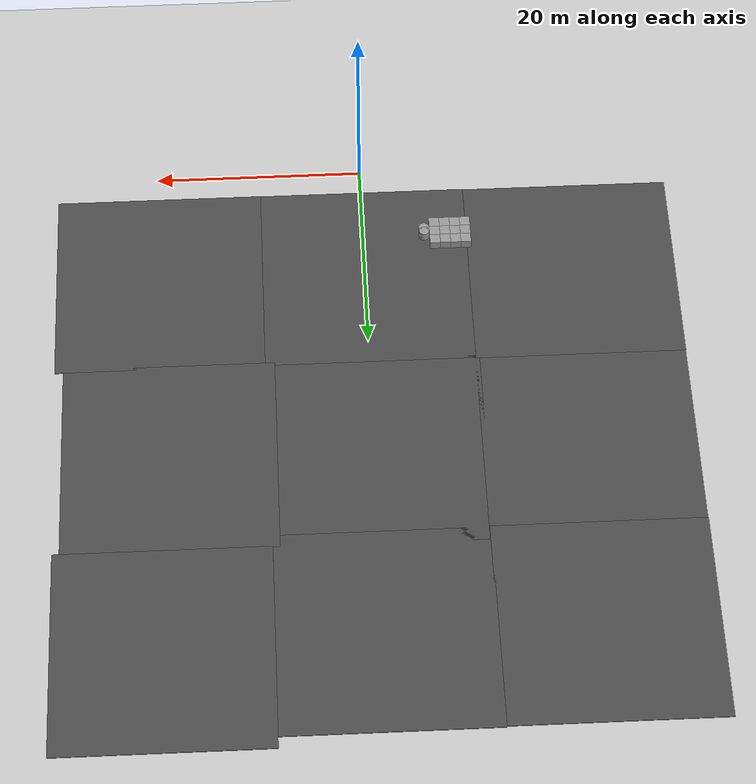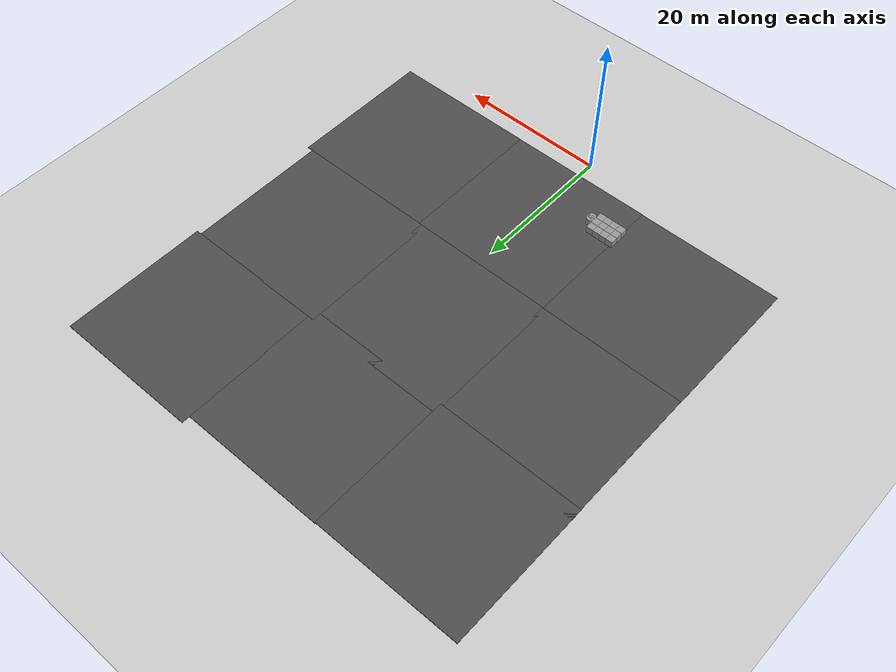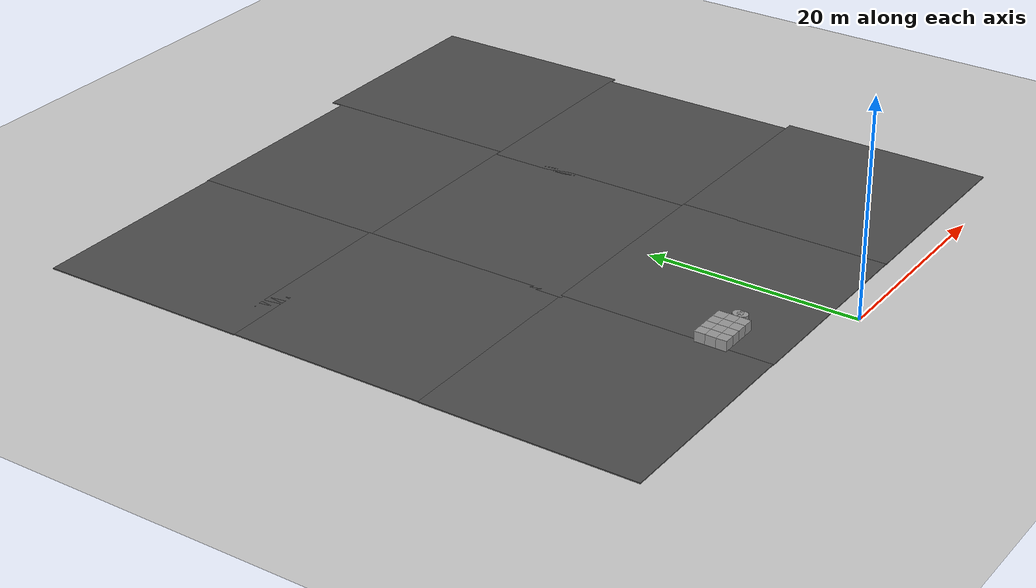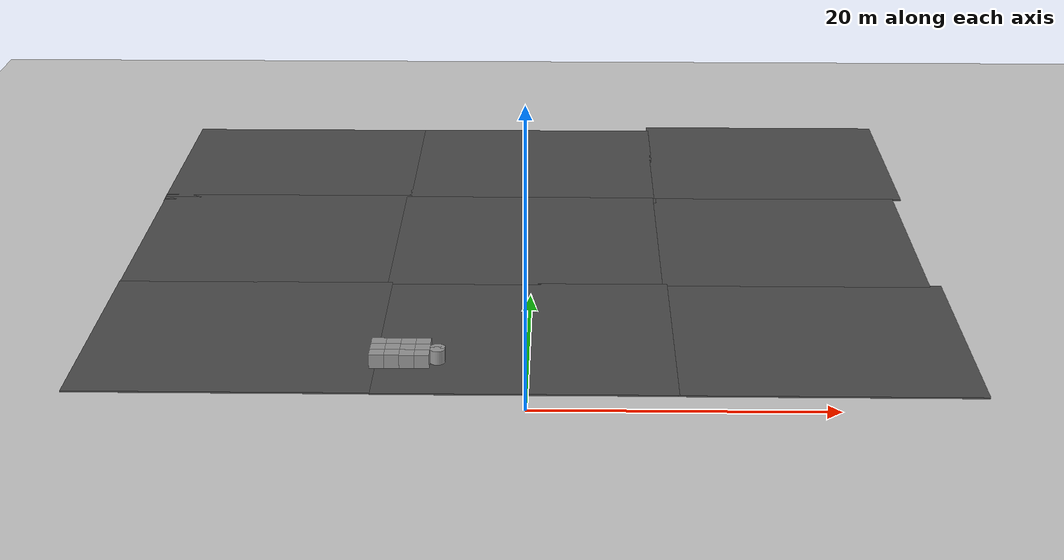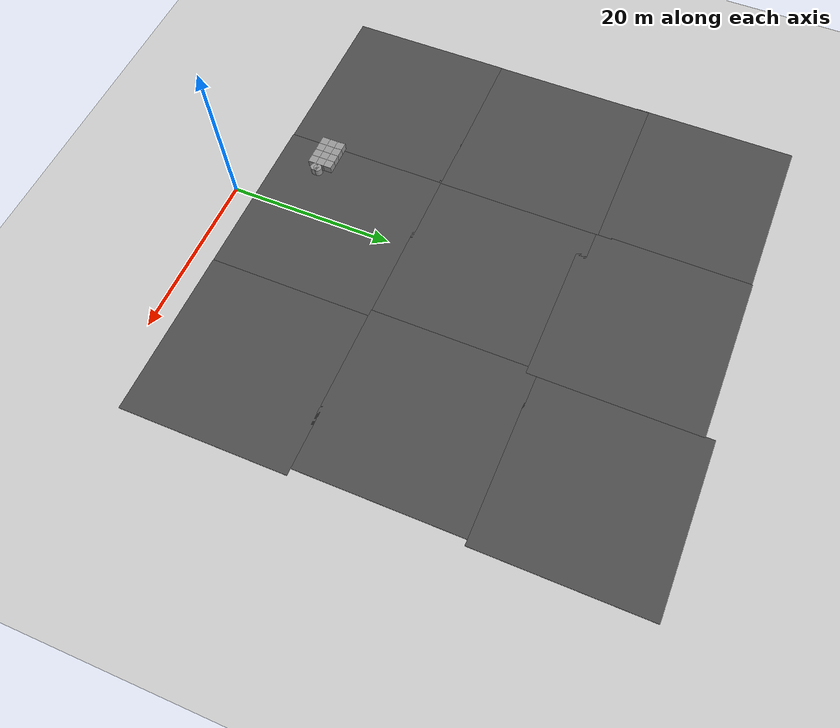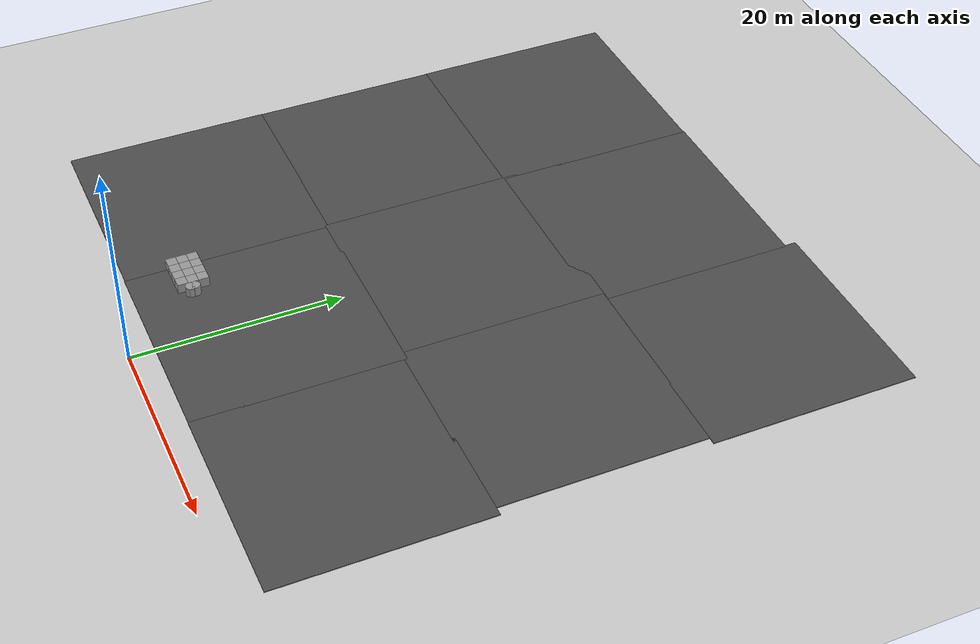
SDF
<sdf version="1.6">
 <world name="default">
  <light name="sun" type="directional">
   <pose>0 0 10 0 -0 0</pose>
   <diffuse>0.8 0.8 0.8 1</diffuse>
   <specular>0.1 0.1 0.1 1</specular>
   <attenuation>
    <range>1000</range>
    <constant>0.9</constant>
    <linear>0.01</linear>
    <quadratic>0.001</quadratic>
   </attenuation>
   <direction>-0.5 0.5 -1</direction>
  </light>
  <model name="ground_plane">
   <static>1</static>
   <link name="link">
    <collision name="collision">
     <geometry><plane><normal>0 0 1</normal><size>100 100</size></plane></geometry>
     <surface><friction><ode><mu>100</mu><mu2>50</mu2></ode></friction></surface>
    </collision>
    <visual name="visual">
     <cast_shadows>0</cast_shadows>
     <geometry><plane><normal>0 0 1</normal><size>100 100</size></plane></geometry>
     <material>
      <script><uri>file://media/materials/scripts/gazebo.material</uri><name>Gazebo/Grey</name></script>
     </material>
    </visual>
   </link>
  </model>
  <gravity>0 0 -9.8</gravity>
  <magnetic_field>6e-06 2.3e-05 -4.2e-05</magnetic_field>
  <atmosphere type="adiabatic"/>
  <physics name="default_physics" default="0" type="ode">
   <max_step_size>0.002</max_step_size>
   <real_time_factor>2</real_time_factor>
   <real_time_update_rate>1000</real_time_update_rate>
  </physics>
  <scene><ambient>0.4 0.4 0.4 1</ambient><background>0.7 0.7 0.7 1</background><shadows>1</shadows></scene>
  <spherical_coordinates>
   <surface_model>EARTH_WGS84</surface_model>
   <latitude_deg>0</latitude_deg>
   <longitude_deg>0</longitude_deg>
   <elevation>0</elevation>
   <heading_deg>0</heading_deg>
  </spherical_coordinates>
  <model name="asphalt_plane">
   <static>1</static>
   <link name="link">
    <collision name="collision"><geometry><box><size>20 20 0.1</size></box></geometry></collision>
    <visual name="visual">
     <cast_shadows>0</cast_shadows>
     <geometry><box><size>20 20 0.1</size></box></geometry>
     <material>
      <script>
       <uri>model://asphalt_plane/materials/scripts</uri>
       <uri>model://asphalt_plane/materials/textures</uri>
       <name>vrc/asphalt</name>
      </script>
     </material>
    </visual>
   </link>
   <pose>-0.132526 12.4193 0 0 -0 0</pose>
  </model>
  <model name="asphalt_plane_0">
   <static>1</static>
   <link name="link">
    <collision name="collision"><geometry><box><size>20 20 0.1</size></box></geometry></collision>
    <visual name="visual">
     <cast_shadows>0</cast_shadows>
     <geometry><box><size>20 20 0.1</size></box></geometry>
     <material>
      <script>
       <uri>model://asphalt_plane/materials/scripts</uri>
       <uri>model://asphalt_plane/materials/textures</uri>
       <name>vrc/asphalt</name>
      </script>
     </material>
    </visual>
   </link>
   <pose>-20.1156 12.4778 0 0 -0 0</pose>
  </model>
  <model name="asphalt_plane_1">
   <static>1</static>
   <link name="link">
    <collision name="collision"><geometry><box><size>20 20 0.1</size></box></geometry></collision>
    <visual name="visual">
     <cast_shadows>0</cast_shadows>
     <geometry><box><size>20 20 0.1</size></box></geometry>
     <material>
      <script>
       <uri>model://asphalt_plane/materials/scripts</uri>
       <uri>model://asphalt_plane/materials/textures</uri>
       <name>vrc/asphalt</name>
      </script>
     </material>
    </visual>
   </link>
   <pose>19.7678 12.3935 0 0 -0 0</pose>
  </model>
  <model name="asphalt_plane_2">
   <static>1</static>
   <link name="link">
    <collision name="collision"><geometry><box><size>20 20 0.1</size></box></geometry></collision>
    <visual name="visual">
     <cast_shadows>0</cast_shadows>
     <geometry><box><size>20 20 0.1</size></box></geometry>
     <material>
      <script>
       <uri>model://asphalt_plane/materials/scripts</uri>
       <uri>model://asphalt_plane/materials/textures</uri>
       <name>vrc/asphalt</name>
      </script>
     </material>
    </visual>
   </link>
   <pose>-20.0756 32.4215 0 0 -0 0</pose>
  </model>
  <model name="asphalt_plane_3">
   <static>1</static>
   <link name="link">
    <collision name="collision"><geometry><box><size>20 20 0.1</size></box></geometry></collision>
    <visual name="visual">
     <cast_shadows>0</cast_shadows>
     <geometry><box><size>20 20 0.1</size></box></geometry>
     <material>
      <script>
       <uri>model://asphalt_plane/materials/scripts</uri>
       <uri>model://asphalt_plane/materials/textures</uri>
       <name>vrc/asphalt</name>
      </script>
     </material>
    </visual>
   </link>
   <pose>-0.46371 32.1726 0 0 -0 0</pose>
  </model>
  <model name="asphalt_plane_4">
   <static>1</static>
   <link name="link">
    <collision name="collision"><geometry><box><size>20 20 0.1</size></box></geometry></collision>
    <visual name="visual">
     <cast_shadows>0</cast_shadows>
     <geometry><box><size>20 20 0.1</size></box></geometry>
     <material>
      <script>
       <uri>model://asphalt_plane/materials/scripts</uri>
       <uri>model://asphalt_plane/materials/textures</uri>
       <name>vrc/asphalt</name>
      </script>
     </material>
    </visual>
   </link>
   <pose>18.9559 32.1129 0 0 -0 0</pose>
  </model>
  <model name="asphalt_plane_5">
   <static>1</static>
   <link name="link">
    <collision name="collision"><geometry><box><size>20 20 0.1</size></box></geometry></collision>
    <visual name="visual">
     <cast_shadows>0</cast_shadows>
     <geometry><box><size>20 20 0.1</size></box></geometry>
     <material>
      <script>
       <uri>model://asphalt_plane/materials/scripts</uri>
       <uri>model://asphalt_plane/materials/textures</uri>
       <name>vrc/asphalt</name>
      </script>
     </material>
    </visual>
   </link>
   <pose>-20.1223 50.8095 0 0 -0 0</pose>
  </model>
  <model name="asphalt_plane_6">
   <static>1</static>
   <link name="link">
    <collision name="collision"><geometry><box><size>20 20 0.1</size></box></geometry></collision>
    <visual name="visual">
     <cast_shadows>0</cast_shadows>
     <geometry><box><size>20 20 0.1</size></box></geometry>
     <material>
      <script>
       <uri>model://asphalt_plane/materials/scripts</uri>
       <uri>model://asphalt_plane/materials/textures</uri>
       <name>vrc/asphalt</name>
      </script>
     </material>
    </visual>
   </link>
   <pose>-0.241035 50.8968 0 0 -0 0</pose>
  </model>
  <model name="asphalt_plane_7">
   <static>1</static>
   <link name="link">
    <collision name="collision"><geometry><box><size>20 20 0.1</size></box></geometry></collision>
    <visual name="visual">
     <cast_shadows>0</cast_shadows>
     <geometry><box><size>20 20 0.1</size></box></geometry>
     <material>
      <script>
       <uri>model://asphalt_plane/materials/scripts</uri>
       <uri>model://asphalt_plane/materials/textures</uri>
       <name>vrc/asphalt</name>
      </script>
     </material>
    </visual>
   </link>
   <pose>19.6222 51.9888 0 0 -0 0</pose>
  </model>
  <model name="car_0">
   <link name="link_0">
    <pose>-0.5 -0.883748 0 0 -0 0</pose>
    <inertial>
     <mass>1</mass>
     <inertia>
      <ixx>0.166667</ixx>
      <ixy>0</ixy>
      <ixz>0</ixz>
      <iyy>0.166667</iyy>
      <iyz>0</iyz>
      <izz>0.166667</izz>
     </inertia>
    </inertial>
    <visual name="visual">
     <geometry><box><size>1 1 1</size></box></geometry>
     <material>
      <lighting>1</lighting>
      <script><uri>file://media/materials/scripts/gazebo.material</uri><name>Gazebo/Grey</name></script>
      <ambient>0.3 0.3 0.3 1</ambient>
      <diffuse>0.7 0.7 0.7 1</diffuse>
      <specular>0.01 0.01 0.01 1</specular>
      <emissive>0 0 0 1</emissive>
     </material>
    </visual>
    <collision name="collision">
     <geometry><box><size>1 1 1</size></box></geometry>
     <surface>
      <friction>
       <ode><mu>1</mu><mu2>1</mu2><fdir1>0 0 0</fdir1><slip1>0</slip1><slip2>0</slip2></ode>
       <torsional>
        <coefficient>1</coefficient>
        <patch_radius>0</patch_radius>
        <surface_radius>0</surface_radius>
        <use_patch_radius>1</use_patch_radius>
        <ode><slip>0</slip></ode>
       </torsional>
      </friction>
      <bounce><restitution_coefficient>0</restitution_coefficient><threshold>1e+06</threshold></bounce>
      <contact>
       <collide_without_contact>0</collide_without_contact>
       <collide_without_contact_bitmask>1</collide_without_contact_bitmask>
       <collide_bitmask>1</collide_bitmask>
       <ode>
        <soft_cfm>0</soft_cfm>
        <soft_erp>0.2</soft_erp>
        <kp>1e+13</kp>
        <kd>1</kd>
        <max_vel>0.01</max_vel>
        <min_depth>0</min_depth>
       </ode>
       <bullet>
        <split_impulse>1</split_impulse>
        <split_impulse_penetration_threshold>-0.01</split_impulse_penetration_threshold>
        <soft_cfm>0</soft_cfm>
        <soft_erp>0.2</soft_erp>
        <kp>1e+13</kp>
        <kd>1</kd>
       </bullet>
      </contact>
     </surface>
    </collision>
   </link>
   <link name="link_1">
    <pose>0.5 -0.883748 0 0 -0 0</pose>
    <inertial>
     <mass>1</mass>
     <inertia>
      <ixx>0.166667</ixx>
      <ixy>0</ixy>
      <ixz>0</ixz>
      <iyy>0.166667</iyy>
      <iyz>0</iyz>
      <izz>0.166667</izz>
     </inertia>
    </inertial>
    <visual name="visual">
     <geometry><box><size>1 1 1</size></box></geometry>
     <material>
      <lighting>1</lighting>
      <script><uri>file://media/materials/scripts/gazebo.material</uri><name>Gazebo/Grey</name></script>
      <ambient>0.3 0.3 0.3 1</ambient>
      <diffuse>0.7 0.7 0.7 1</diffuse>
      <specular>0.01 0.01 0.01 1</specular>
      <emissive>0 0 0 1</emissive>
     </material>
    </visual>
    <collision name="collision">
     <geometry><box><size>1 1 1</size></box></geometry>
     <surface>
      <friction>
       <ode><mu>1</mu><mu2>1</mu2><fdir1>0 0 0</fdir1><slip1>0</slip1><slip2>0</slip2></ode>
       <torsional>
        <coefficient>1</coefficient>
        <patch_radius>0</patch_radius>
        <surface_radius>0</surface_radius>
        <use_patch_radius>1</use_patch_radius>
        <ode><slip>0</slip></ode>
       </torsional>
      </friction>
      <bounce><restitution_coefficient>0</restitution_coefficient><threshold>1e+06</threshold></bounce>
      <contact>
       <collide_without_contact>0</collide_without_contact>
       <collide_without_contact_bitmask>1</collide_without_contact_bitmask>
       <collide_bitmask>1</collide_bitmask>
       <ode>
        <soft_cfm>0</soft_cfm>
        <soft_erp>0.2</soft_erp>
        <kp>1e+13</kp>
        <kd>1</kd>
        <max_vel>0.01</max_vel>
        <min_depth>0</min_depth>
       </ode>
       <bullet>
        <split_impulse>1</split_impulse>
        <split_impulse_penetration_threshold>-0.01</split_impulse_penetration_threshold>
        <soft_cfm>0</soft_cfm>
        <soft_erp>0.2</soft_erp>
        <kp>1e+13</kp>
        <kd>1</kd>
       </bullet>
      </contact>
     </surface>
    </collision>
   </link>
   <link name="link_12">
    <pose>-1.5 0.11625 0 0 -0 0</pose>
    <inertial>
     <mass>1</mass>
     <inertia>
      <ixx>0.166667</ixx>
      <ixy>0</ixy>
      <ixz>0</ixz>
      <iyy>0.166667</iyy>
      <iyz>0</iyz>
      <izz>0.166667</izz>
     </inertia>
    </inertial>
    <visual name="visual">
     <geometry><box><size>1 1 1</size></box></geometry>
     <material>
      <lighting>1</lighting>
      <script><uri>file://media/materials/scripts/gazebo.material</uri><name>Gazebo/Grey</name></script>
      <ambient>0.3 0.3 0.3 1</ambient>
      <diffuse>0.7 0.7 0.7 1</diffuse>
      <specular>0.01 0.01 0.01 1</specular>
      <emissive>0 0 0 1</emissive>
     </material>
    </visual>
    <collision name="collision">
     <geometry><box><size>1 1 1</size></box></geometry>
     <surface>
      <friction>
       <ode><mu>1</mu><mu2>1</mu2><fdir1>0 0 0</fdir1><slip1>0</slip1><slip2>0</slip2></ode>
       <torsional>
        <coefficient>1</coefficient>
        <patch_radius>0</patch_radius>
        <surface_radius>0</surface_radius>
        <use_patch_radius>1</use_patch_radius>
        <ode><slip>0</slip></ode>
       </torsional>
      </friction>
      <bounce><restitution_coefficient>0</restitution_coefficient><threshold>1e+06</threshold></bounce>
      <contact>
       <collide_without_contact>0</collide_without_contact>
       <collide_without_contact_bitmask>1</collide_without_contact_bitmask>
       <collide_bitmask>1</collide_bitmask>
       <ode>
        <soft_cfm>0</soft_cfm>
        <soft_erp>0.2</soft_erp>
        <kp>1e+13</kp>
        <kd>1</kd>
        <max_vel>0.01</max_vel>
        <min_depth>0</min_depth>
       </ode>
       <bullet>
        <split_impulse>1</split_impulse>
        <split_impulse_penetration_threshold>-0.01</split_impulse_penetration_threshold>
        <soft_cfm>0</soft_cfm>
        <soft_erp>0.2</soft_erp>
        <kp>1e+13</kp>
        <kd>1</kd>
       </bullet>
      </contact>
     </surface>
    </collision>
   </link>
   <link name="link_13">
    <pose>1.5 1.11625 0 0 -0 0</pose>
    <inertial>
     <mass>1</mass>
     <inertia>
      <ixx>0.166667</ixx>
      <ixy>0</ixy>
      <ixz>0</ixz>
      <iyy>0.166667</iyy>
      <iyz>0</iyz>
      <izz>0.166667</izz>
     </inertia>
    </inertial>
    <visual name="visual">
     <geometry><box><size>1 1 1</size></box></geometry>
     <material>
      <lighting>1</lighting>
      <script><uri>file://media/materials/scripts/gazebo.material</uri><name>Gazebo/Grey</name></script>
      <ambient>0.3 0.3 0.3 1</ambient>
      <diffuse>0.7 0.7 0.7 1</diffuse>
      <specular>0.01 0.01 0.01 1</specular>
      <emissive>0 0 0 1</emissive>
     </material>
    </visual>
    <collision name="collision">
     <geometry><box><size>1 1 1</size></box></geometry>
     <surface>
      <friction>
       <ode><mu>1</mu><mu2>1</mu2><fdir1>0 0 0</fdir1><slip1>0</slip1><slip2>0</slip2></ode>
       <torsional>
        <coefficient>1</coefficient>
        <patch_radius>0</patch_radius>
        <surface_radius>0</surface_radius>
        <use_patch_radius>1</use_patch_radius>
        <ode><slip>0</slip></ode>
       </torsional>
      </friction>
      <bounce><restitution_coefficient>0</restitution_coefficient><threshold>1e+06</threshold></bounce>
      <contact>
       <collide_without_contact>0</collide_without_contact>
       <collide_without_contact_bitmask>1</collide_without_contact_bitmask>
       <collide_bitmask>1</collide_bitmask>
       <ode>
        <soft_cfm>0</soft_cfm>
        <soft_erp>0.2</soft_erp>
        <kp>1e+13</kp>
        <kd>1</kd>
        <max_vel>0.01</max_vel>
        <min_depth>0</min_depth>
       </ode>
       <bullet>
        <split_impulse>1</split_impulse>
        <split_impulse_penetration_threshold>-0.01</split_impulse_penetration_threshold>
        <soft_cfm>0</soft_cfm>
        <soft_erp>0.2</soft_erp>
        <kp>1e+13</kp>
        <kd>1</kd>
       </bullet>
      </contact>
     </surface>
    </collision>
   </link>
   <link name="link_14">
    <pose>0.5 1.11625 0 0 -0 0</pose>
    <inertial>
     <mass>1</mass>
     <inertia>
      <ixx>0.166667</ixx>
      <ixy>0</ixy>
      <ixz>0</ixz>
      <iyy>0.166667</iyy>
      <iyz>0</iyz>
      <izz>0.166667</izz>
     </inertia>
    </inertial>
    <visual name="visual">
     <geometry><box><size>1 1 1</size></box></geometry>
     <material>
      <lighting>1</lighting>
      <script><uri>file://media/materials/scripts/gazebo.material</uri><name>Gazebo/Grey</name></script>
      <ambient>0.3 0.3 0.3 1</ambient>
      <diffuse>0.7 0.7 0.7 1</diffuse>
      <specular>0.01 0.01 0.01 1</specular>
      <emissive>0 0 0 1</emissive>
     </material>
    </visual>
    <collision name="collision">
     <geometry><box><size>1 1 1</size></box></geometry>
     <surface>
      <friction>
       <ode><mu>1</mu><mu2>1</mu2><fdir1>0 0 0</fdir1><slip1>0</slip1><slip2>0</slip2></ode>
       <torsional>
        <coefficient>1</coefficient>
        <patch_radius>0</patch_radius>
        <surface_radius>0</surface_radius>
        <use_patch_radius>1</use_patch_radius>
        <ode><slip>0</slip></ode>
       </torsional>
      </friction>
      <bounce><restitution_coefficient>0</restitution_coefficient><threshold>1e+06</threshold></bounce>
      <contact>
       <collide_without_contact>0</collide_without_contact>
       <collide_without_contact_bitmask>1</collide_without_contact_bitmask>
       <collide_bitmask>1</collide_bitmask>
       <ode>
        <soft_cfm>0</soft_cfm>
        <soft_erp>0.2</soft_erp>
        <kp>1e+13</kp>
        <kd>1</kd>
        <max_vel>0.01</max_vel>
        <min_depth>0</min_depth>
       </ode>
       <bullet>
        <split_impulse>1</split_impulse>
        <split_impulse_penetration_threshold>-0.01</split_impulse_penetration_threshold>
        <soft_cfm>0</soft_cfm>
        <soft_erp>0.2</soft_erp>
        <kp>1e+13</kp>
        <kd>1</kd>
       </bullet>
      </contact>
     </surface>
    </collision>
   </link>
   <link name="link_15">
    <pose>-0.5 1.11625 0 0 -0 0</pose>
    <inertial>
     <mass>1</mass>
     <inertia>
      <ixx>0.166667</ixx>
      <ixy>0</ixy>
      <ixz>0</ixz>
      <iyy>0.166667</iyy>
      <iyz>0</iyz>
      <izz>0.166667</izz>
     </inertia>
    </inertial>
    <visual name="visual">
     <geometry><box><size>1 1 1</size></box></geometry>
     <material>
      <lighting>1</lighting>
      <script><uri>file://media/materials/scripts/gazebo.material</uri><name>Gazebo/Grey</name></script>
      <ambient>0.3 0.3 0.3 1</ambient>
      <diffuse>0.7 0.7 0.7 1</diffuse>
      <specular>0.01 0.01 0.01 1</specular>
      <emissive>0 0 0 1</emissive>
     </material>
    </visual>
    <collision name="collision">
     <geometry><box><size>1 1 1</size></box></geometry>
     <surface>
      <friction>
       <ode><mu>1</mu><mu2>1</mu2><fdir1>0 0 0</fdir1><slip1>0</slip1><slip2>0</slip2></ode>
       <torsional>
        <coefficient>1</coefficient>
        <patch_radius>0</patch_radius>
        <surface_radius>0</surface_radius>
        <use_patch_radius>1</use_patch_radius>
        <ode><slip>0</slip></ode>
       </torsional>
      </friction>
      <bounce><restitution_coefficient>0</restitution_coefficient><threshold>1e+06</threshold></bounce>
      <contact>
       <collide_without_contact>0</collide_without_contact>
       <collide_without_contact_bitmask>1</collide_without_contact_bitmask>
       <collide_bitmask>1</collide_bitmask>
       <ode>
        <soft_cfm>0</soft_cfm>
        <soft_erp>0.2</soft_erp>
        <kp>1e+13</kp>
        <kd>1</kd>
        <max_vel>0.01</max_vel>
        <min_depth>0</min_depth>
       </ode>
       <bullet>
        <split_impulse>1</split_impulse>
        <split_impulse_penetration_threshold>-0.01</split_impulse_penetration_threshold>
        <soft_cfm>0</soft_cfm>
        <soft_erp>0.2</soft_erp>
        <kp>1e+13</kp>
        <kd>1</kd>
       </bullet>
      </contact>
     </surface>
    </collision>
   </link>
   <link name="link_16">
    <pose>-1.5 1.11625 0 0 -0 0</pose>
    <inertial>
     <mass>1</mass>
     <inertia>
      <ixx>0.166667</ixx>
      <ixy>0</ixy>
      <ixz>0</ixz>
      <iyy>0.166667</iyy>
      <iyz>0</iyz>
      <izz>0.166667</izz>
     </inertia>
    </inertial>
    <visual name="visual">
     <geometry><box><size>1 1 1</size></box></geometry>
     <material>
      <lighting>1</lighting>
      <script><uri>file://media/materials/scripts/gazebo.material</uri><name>Gazebo/Grey</name></script>
      <ambient>0.3 0.3 0.3 1</ambient>
      <diffuse>0.7 0.7 0.7 1</diffuse>
      <specular>0.01 0.01 0.01 1</specular>
      <emissive>0 0 0 1</emissive>
     </material>
    </visual>
    <collision name="collision">
     <geometry><box><size>1 1 1</size></box></geometry>
     <surface>
      <friction>
       <ode><mu>1</mu><mu2>1</mu2><fdir1>0 0 0</fdir1><slip1>0</slip1><slip2>0</slip2></ode>
       <torsional>
        <coefficient>1</coefficient>
        <patch_radius>0</patch_radius>
        <surface_radius>0</surface_radius>
        <use_patch_radius>1</use_patch_radius>
        <ode><slip>0</slip></ode>
       </torsional>
      </friction>
      <bounce><restitution_coefficient>0</restitution_coefficient><threshold>1e+06</threshold></bounce>
      <contact>
       <collide_without_contact>0</collide_without_contact>
       <collide_without_contact_bitmask>1</collide_without_contact_bitmask>
       <collide_bitmask>1</collide_bitmask>
       <ode>
        <soft_cfm>0</soft_cfm>
        <soft_erp>0.2</soft_erp>
        <kp>1e+13</kp>
        <kd>1</kd>
        <max_vel>0.01</max_vel>
        <min_depth>0</min_depth>
       </ode>
       <bullet>
        <split_impulse>1</split_impulse>
        <split_impulse_penetration_threshold>-0.01</split_impulse_penetration_threshold>
        <soft_cfm>0</soft_cfm>
        <soft_erp>0.2</soft_erp>
        <kp>1e+13</kp>
        <kd>1</kd>
       </bullet>
      </contact>
     </surface>
    </collision>
   </link>
   <link name="link_19">
    <pose>2.5 -0.287812 0 0 -0 0</pose>
    <inertial>
     <mass>1</mass>
     <inertia><ixx>0.145833</ixx><ixy>0</ixy><ixz>0</ixz><iyy>0.145833</iyy><iyz>0</iyz><izz>0.125</izz></inertia>
    </inertial>
    <visual name="visual">
     <geometry><cylinder><radius>0.5</radius><length>1</length></cylinder></geometry>
     <material>
      <lighting>1</lighting>
      <script><uri>file://media/materials/scripts/gazebo.material</uri><name>Gazebo/Grey</name></script>
      <ambient>0.3 0.3 0.3 1</ambient>
      <diffuse>0.7 0.7 0.7 1</diffuse>
      <specular>0.01 0.01 0.01 1</specular>
      <emissive>0 0 0 1</emissive>
     </material>
    </visual>
    <collision name="collision">
     <geometry><cylinder><radius>0.5</radius><length>1</length></cylinder></geometry>
     <surface>
      <friction>
       <ode><mu>1</mu><mu2>1</mu2><fdir1>0 0 0</fdir1><slip1>0</slip1><slip2>0</slip2></ode>
       <torsional>
        <coefficient>1</coefficient>
        <patch_radius>0</patch_radius>
        <surface_radius>0</surface_radius>
        <use_patch_radius>1</use_patch_radius>
        <ode><slip>0</slip></ode>
       </torsional>
      </friction>
      <bounce><restitution_coefficient>0</restitution_coefficient><threshold>1e+06</threshold></bounce>
      <contact>
       <collide_without_contact>0</collide_without_contact>
       <collide_without_contact_bitmask>1</collide_without_contact_bitmask>
       <collide_bitmask>1</collide_bitmask>
       <ode>
        <soft_cfm>0</soft_cfm>
        <soft_erp>0.2</soft_erp>
        <kp>1e+13</kp>
        <kd>1</kd>
        <max_vel>0.01</max_vel>
        <min_depth>0</min_depth>
       </ode>
       <bullet>
        <split_impulse>1</split_impulse>
        <split_impulse_penetration_threshold>-0.01</split_impulse_penetration_threshold>
        <soft_cfm>0</soft_cfm>
        <soft_erp>0.2</soft_erp>
        <kp>1e+13</kp>
        <kd>1</kd>
       </bullet>
      </contact>
     </surface>
    </collision>
   </link>
   <link name="link_2">
    <pose>1.5 -0.883748 0 0 -0 0</pose>
    <inertial>
     <mass>1</mass>
     <inertia>
      <ixx>0.166667</ixx>
      <ixy>0</ixy>
      <ixz>0</ixz>
      <iyy>0.166667</iyy>
      <iyz>0</iyz>
      <izz>0.166667</izz>
     </inertia>
    </inertial>
    <visual name="visual">
     <geometry><box><size>1 1 1</size></box></geometry>
     <material>
      <lighting>1</lighting>
      <script><uri>file://media/materials/scripts/gazebo.material</uri><name>Gazebo/Grey</name></script>
      <ambient>0.3 0.3 0.3 1</ambient>
      <diffuse>0.7 0.7 0.7 1</diffuse>
      <specular>0.01 0.01 0.01 1</specular>
      <emissive>0 0 0 1</emissive>
     </material>
    </visual>
    <collision name="collision">
     <geometry><box><size>1 1 1</size></box></geometry>
     <surface>
      <friction>
       <ode><mu>1</mu><mu2>1</mu2><fdir1>0 0 0</fdir1><slip1>0</slip1><slip2>0</slip2></ode>
       <torsional>
        <coefficient>1</coefficient>
        <patch_radius>0</patch_radius>
        <surface_radius>0</surface_radius>
        <use_patch_radius>1</use_patch_radius>
        <ode><slip>0</slip></ode>
       </torsional>
      </friction>
      <bounce><restitution_coefficient>0</restitution_coefficient><threshold>1e+06</threshold></bounce>
      <contact>
       <collide_without_contact>0</collide_without_contact>
       <collide_without_contact_bitmask>1</collide_without_contact_bitmask>
       <collide_bitmask>1</collide_bitmask>
       <ode>
        <soft_cfm>0</soft_cfm>
        <soft_erp>0.2</soft_erp>
        <kp>1e+13</kp>
        <kd>1</kd>
        <max_vel>0.01</max_vel>
        <min_depth>0</min_depth>
       </ode>
       <bullet>
        <split_impulse>1</split_impulse>
        <split_impulse_penetration_threshold>-0.01</split_impulse_penetration_threshold>
        <soft_cfm>0</soft_cfm>
        <soft_erp>0.2</soft_erp>
        <kp>1e+13</kp>
        <kd>1</kd>
       </bullet>
      </contact>
     </surface>
    </collision>
   </link>
   <link name="link_20">
    <pose>2.5 0.11625 0 0 -0 0</pose>
    <inertial>
     <mass>1</mass>
     <inertia><ixx>0.145833</ixx><ixy>0</ixy><ixz>0</ixz><iyy>0.145833</iyy><iyz>0</iyz><izz>0.125</izz></inertia>
    </inertial>
    <visual name="visual">
     <geometry><cylinder><radius>0.5</radius><length>1</length></cylinder></geometry>
     <material>
      <lighting>1</lighting>
      <script><uri>file://media/materials/scripts/gazebo.material</uri><name>Gazebo/Grey</name></script>
      <ambient>0.3 0.3 0.3 1</ambient>
      <diffuse>0.7 0.7 0.7 1</diffuse>
      <specular>0.01 0.01 0.01 1</specular>
      <emissive>0 0 0 1</emissive>
     </material>
    </visual>
    <collision name="collision">
     <geometry><cylinder><radius>0.5</radius><length>1</length></cylinder></geometry>
     <surface>
      <friction>
       <ode><mu>1</mu><mu2>1</mu2><fdir1>0 0 0</fdir1><slip1>0</slip1><slip2>0</slip2></ode>
       <torsional>
        <coefficient>1</coefficient>
        <patch_radius>0</patch_radius>
        <surface_radius>0</surface_radius>
        <use_patch_radius>1</use_patch_radius>
        <ode><slip>0</slip></ode>
       </torsional>
      </friction>
      <bounce><restitution_coefficient>0</restitution_coefficient><threshold>1e+06</threshold></bounce>
      <contact>
       <collide_without_contact>0</collide_without_contact>
       <collide_without_contact_bitmask>1</collide_without_contact_bitmask>
       <collide_bitmask>1</collide_bitmask>
       <ode>
        <soft_cfm>0</soft_cfm>
        <soft_erp>0.2</soft_erp>
        <kp>1e+13</kp>
        <kd>1</kd>
        <max_vel>0.01</max_vel>
        <min_depth>0</min_depth>
       </ode>
       <bullet>
        <split_impulse>1</split_impulse>
        <split_impulse_penetration_threshold>-0.01</split_impulse_penetration_threshold>
        <soft_cfm>0</soft_cfm>
        <soft_erp>0.2</soft_erp>
        <kp>1e+13</kp>
        <kd>1</kd>
       </bullet>
      </contact>
     </surface>
    </collision>
   </link>
   <link name="link_3">
    <pose>1.5 0.116252 0 0 -0 0</pose>
    <inertial>
     <mass>1</mass>
     <inertia>
      <ixx>0.166667</ixx>
      <ixy>0</ixy>
      <ixz>0</ixz>
      <iyy>0.166667</iyy>
      <iyz>0</iyz>
      <izz>0.166667</izz>
     </inertia>
    </inertial>
    <visual name="visual">
     <geometry><box><size>1 1 1</size></box></geometry>
     <material>
      <lighting>1</lighting>
      <script><uri>file://media/materials/scripts/gazebo.material</uri><name>Gazebo/Grey</name></script>
      <ambient>0.3 0.3 0.3 1</ambient>
      <diffuse>0.7 0.7 0.7 1</diffuse>
      <specular>0.01 0.01 0.01 1</specular>
      <emissive>0 0 0 1</emissive>
     </material>
    </visual>
    <collision name="collision">
     <geometry><box><size>1 1 1</size></box></geometry>
     <surface>
      <friction>
       <ode><mu>1</mu><mu2>1</mu2><fdir1>0 0 0</fdir1><slip1>0</slip1><slip2>0</slip2></ode>
       <torsional>
        <coefficient>1</coefficient>
        <patch_radius>0</patch_radius>
        <surface_radius>0</surface_radius>
        <use_patch_radius>1</use_patch_radius>
        <ode><slip>0</slip></ode>
       </torsional>
      </friction>
      <bounce><restitution_coefficient>0</restitution_coefficient><threshold>1e+06</threshold></bounce>
      <contact>
       <collide_without_contact>0</collide_without_contact>
       <collide_without_contact_bitmask>1</collide_without_contact_bitmask>
       <collide_bitmask>1</collide_bitmask>
       <ode>
        <soft_cfm>0</soft_cfm>
        <soft_erp>0.2</soft_erp>
        <kp>1e+13</kp>
        <kd>1</kd>
        <max_vel>0.01</max_vel>
        <min_depth>0</min_depth>
       </ode>
       <bullet>
        <split_impulse>1</split_impulse>
        <split_impulse_penetration_threshold>-0.01</split_impulse_penetration_threshold>
        <soft_cfm>0</soft_cfm>
        <soft_erp>0.2</soft_erp>
        <kp>1e+13</kp>
        <kd>1</kd>
       </bullet>
      </contact>
     </surface>
    </collision>
   </link>
   <link name="link_4">
    <pose>0.5 0.116252 0 0 -0 0</pose>
    <inertial>
     <mass>1</mass>
     <inertia>
      <ixx>0.166667</ixx>
      <ixy>0</ixy>
      <ixz>0</ixz>
      <iyy>0.166667</iyy>
      <iyz>0</iyz>
      <izz>0.166667</izz>
     </inertia>
    </inertial>
    <visual name="visual">
     <geometry><box><size>1 1 1</size></box></geometry>
     <material>
      <lighting>1</lighting>
      <script><uri>file://media/materials/scripts/gazebo.material</uri><name>Gazebo/Grey</name></script>
      <ambient>0.3 0.3 0.3 1</ambient>
      <diffuse>0.7 0.7 0.7 1</diffuse>
      <specular>0.01 0.01 0.01 1</specular>
      <emissive>0 0 0 1</emissive>
     </material>
    </visual>
    <collision name="collision">
     <geometry><box><size>1 1 1</size></box></geometry>
     <surface>
      <friction>
       <ode><mu>1</mu><mu2>1</mu2><fdir1>0 0 0</fdir1><slip1>0</slip1><slip2>0</slip2></ode>
       <torsional>
        <coefficient>1</coefficient>
        <patch_radius>0</patch_radius>
        <surface_radius>0</surface_radius>
        <use_patch_radius>1</use_patch_radius>
        <ode><slip>0</slip></ode>
       </torsional>
      </friction>
      <bounce><restitution_coefficient>0</restitution_coefficient><threshold>1e+06</threshold></bounce>
      <contact>
       <collide_without_contact>0</collide_without_contact>
       <collide_without_contact_bitmask>1</collide_without_contact_bitmask>
       <collide_bitmask>1</collide_bitmask>
       <ode>
        <soft_cfm>0</soft_cfm>
        <soft_erp>0.2</soft_erp>
        <kp>1e+13</kp>
        <kd>1</kd>
        <max_vel>0.01</max_vel>
        <min_depth>0</min_depth>
       </ode>
       <bullet>
        <split_impulse>1</split_impulse>
        <split_impulse_penetration_threshold>-0.01</split_impulse_penetration_threshold>
        <soft_cfm>0</soft_cfm>
        <soft_erp>0.2</soft_erp>
        <kp>1e+13</kp>
        <kd>1</kd>
       </bullet>
      </contact>
     </surface>
    </collision>
   </link>
   <link name="link_5">
    <pose>-0.5 0.116252 0 0 -0 0</pose>
    <inertial>
     <mass>1</mass>
     <inertia>
      <ixx>0.166667</ixx>
      <ixy>0</ixy>
      <ixz>0</ixz>
      <iyy>0.166667</iyy>
      <iyz>0</iyz>
      <izz>0.166667</izz>
     </inertia>
    </inertial>
    <visual name="visual">
     <geometry><box><size>1 1 1</size></box></geometry>
     <material>
      <lighting>1</lighting>
      <script><uri>file://media/materials/scripts/gazebo.material</uri><name>Gazebo/Grey</name></script>
      <ambient>0.3 0.3 0.3 1</ambient>
      <diffuse>0.7 0.7 0.7 1</diffuse>
      <specular>0.01 0.01 0.01 1</specular>
      <emissive>0 0 0 1</emissive>
     </material>
    </visual>
    <collision name="collision">
     <geometry><box><size>1 1 1</size></box></geometry>
     <surface>
      <friction>
       <ode><mu>1</mu><mu2>1</mu2><fdir1>0 0 0</fdir1><slip1>0</slip1><slip2>0</slip2></ode>
       <torsional>
        <coefficient>1</coefficient>
        <patch_radius>0</patch_radius>
        <surface_radius>0</surface_radius>
        <use_patch_radius>1</use_patch_radius>
        <ode><slip>0</slip></ode>
       </torsional>
      </friction>
      <bounce><restitution_coefficient>0</restitution_coefficient><threshold>1e+06</threshold></bounce>
      <contact>
       <collide_without_contact>0</collide_without_contact>
       <collide_without_contact_bitmask>1</collide_without_contact_bitmask>
       <collide_bitmask>1</collide_bitmask>
       <ode>
        <soft_cfm>0</soft_cfm>
        <soft_erp>0.2</soft_erp>
        <kp>1e+13</kp>
        <kd>1</kd>
        <max_vel>0.01</max_vel>
        <min_depth>0</min_depth>
       </ode>
       <bullet>
        <split_impulse>1</split_impulse>
        <split_impulse_penetration_threshold>-0.01</split_impulse_penetration_threshold>
        <soft_cfm>0</soft_cfm>
        <soft_erp>0.2</soft_erp>
        <kp>1e+13</kp>
        <kd>1</kd>
       </bullet>
      </contact>
     </surface>
    </collision>
   </link>
   <link name="link_9">
    <pose>-1.5 -0.883748 0 0 -0 0</pose>
    <inertial>
     <mass>1</mass>
     <inertia>
      <ixx>0.166667</ixx>
      <ixy>0</ixy>
      <ixz>0</ixz>
      <iyy>0.166667</iyy>
      <iyz>0</iyz>
      <izz>0.166667</izz>
     </inertia>
    </inertial>
    <visual name="visual">
     <geometry><box><size>1 1 1</size></box></geometry>
     <material>
      <lighting>1</lighting>
      <script><uri>file://media/materials/scripts/gazebo.material</uri><name>Gazebo/Grey</name></script>
      <ambient>0.3 0.3 0.3 1</ambient>
      <diffuse>0.7 0.7 0.7 1</diffuse>
      <specular>0.01 0.01 0.01 1</specular>
      <emissive>0 0 0 1</emissive>
     </material>
    </visual>
    <collision name="collision">
     <geometry><box><size>1 1 1</size></box></geometry>
     <surface>
      <friction>
       <ode><mu>1</mu><mu2>1</mu2><fdir1>0 0 0</fdir1><slip1>0</slip1><slip2>0</slip2></ode>
       <torsional>
        <coefficient>1</coefficient>
        <patch_radius>0</patch_radius>
        <surface_radius>0</surface_radius>
        <use_patch_radius>1</use_patch_radius>
        <ode><slip>0</slip></ode>
       </torsional>
      </friction>
      <bounce><restitution_coefficient>0</restitution_coefficient><threshold>1e+06</threshold></bounce>
      <contact>
       <collide_without_contact>0</collide_without_contact>
       <collide_without_contact_bitmask>1</collide_without_contact_bitmask>
       <collide_bitmask>1</collide_bitmask>
       <ode>
        <soft_cfm>0</soft_cfm>
        <soft_erp>0.2</soft_erp>
        <kp>1e+13</kp>
        <kd>1</kd>
        <max_vel>0.01</max_vel>
        <min_depth>0</min_depth>
       </ode>
       <bullet>
        <split_impulse>1</split_impulse>
        <split_impulse_penetration_threshold>-0.01</split_impulse_penetration_threshold>
        <soft_cfm>0</soft_cfm>
        <soft_erp>0.2</soft_erp>
        <kp>1e+13</kp>
        <kd>1</kd>
       </bullet>
      </contact>
     </surface>
    </collision>
   </link>
   <static>1</static>
   <pose>-8.5 7.88375 0.5 0 -0 0</pose>
  </model>
 </world>
</sdf>
